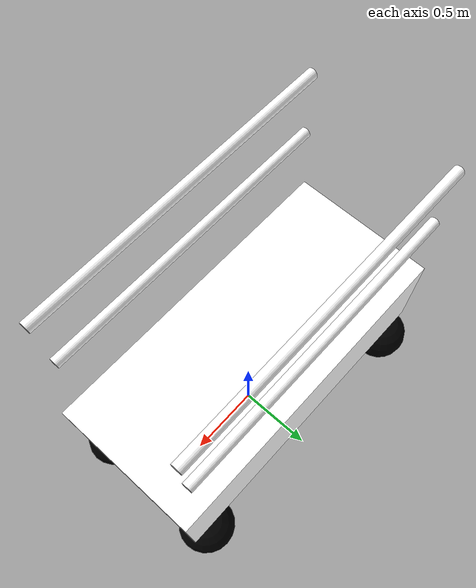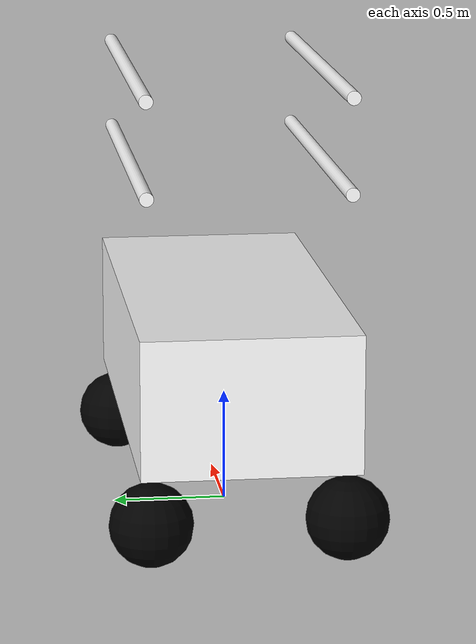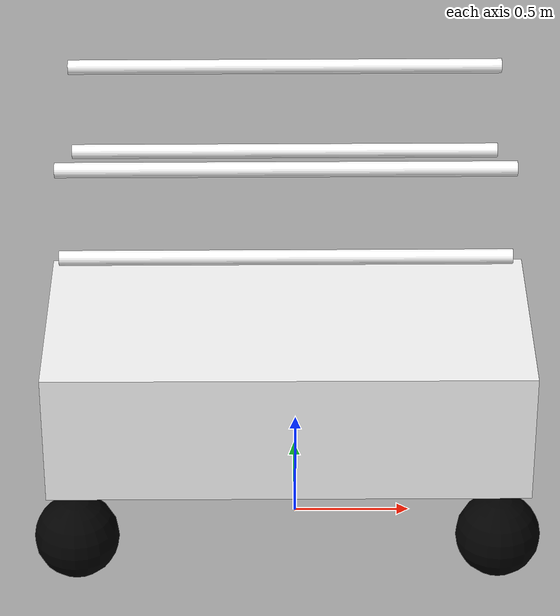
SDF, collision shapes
<sdf version="1.9">
    <model name="Mecanum_lift">
    	<pose>0 0 0 0 0 0</pose>
    	<link name="gt"/>
    	<pose>0 0 0.01 0 0 0</pose>
        <link name="base_footprint">
            <pose relative_to='gt_joint'>0 0 0 0 0 0</pose>
            <inertial>
                <mass>1.14395</mass>
                <inertia>
                    <ixx>0.126164</ixx>
                    <ixy>0</ixy>
                    <ixz>0</ixz>
                    <iyy>0.416519</iyy>
                    <iyz>0</iyz>
                    <izz>0.481014</izz>
                </inertia>
            </inertial>
            <collision name="scissor">
                <pose>-0.03 -0.132 0.708 0 0 0</pose>
                <geometry>
                    <box>
                        <size>2.04 0.936 0.6</size>
                    </box>
                </geometry>
            </collision>
            <collision name="bar_1">
                <pose>-0.042 0.294 1.98 0 1.57 0</pose>
                <geometry>
                    <cylinder>
                        <radius>0.03</radius>
                        <length>1.8</length>
                    </cylinder>
                </geometry>
            </collision>
            <collision name="bar_2">
                <pose>-0.042 0.294 1.578 0 1.57 0</pose>
                <geometry>
                    <cylinder>
                        <radius>0.03</radius>
                        <length>1.8</length>
                    </cylinder>
                </geometry>
            </collision>
            <collision name="bar_3">
                <pose>-0.042 -0.558 1.578 0 1.57 0</pose>
                <geometry>
                    <cylinder>
                        <radius>0.03</radius>
                        <length>1.8</length>
                    </cylinder>
                </geometry>
            </collision>
            <collision name="bar_4">
                <pose>-0.042 -0.558 1.98 0 1.57 0</pose>
                <geometry>
                    <cylinder>
                        <radius>0.03</radius>
                        <length>1.8</length>
                    </cylinder>
                </geometry>
            </collision>
            <visual name="visual">
                <pose>0 0 -0.084 1.57 0 0</pose>
                <geometry>
                    <mesh>
                        <scale>0.6 0.6 0.6</scale>
                        <uri>model://Mecanum_lift/meshes/MecanumLift.dae</uri>
                    </mesh>
                </geometry>
                <material>
                    <diffuse>1.0 1.0 1.0</diffuse>
                    <specular>1.0 1.0 1.0</specular>
                    <pbr>
                        <metal>
                            <albedo_map>model://Mecanum_lift/materials/textures/Forklift_Forklift_BaseColor.png</albedo_map>
                            <normal_map>model://Mecanum_lift/materials/textures/Forklift_Forklift_Normal.png</normal_map>
                            <metalness_map>model://Mecanum_lift/materials/textures/Forklift_Forklift_Metallic.png</metalness_map>
                            <roughness_map>model://Mecanum_lift/materials/textures/Forklift_Forklift_Roughness.png</roughness_map>
                            <environment_map>https://fuel.ignitionrobotics.org/1.0/openrobotics/models/Reflective table/1/files/materials/textures/DepotEnvMap.dds</environment_map>
                        </metal>
                    </pbr>
                    <!-- fallback to script if no PBR support-->
                    <script>
                        <uri>model://Mecanum_lift/materials/scripts/</uri>
                        <uri>model://Mecanum_lift/materials/textures/</uri>
                        <name>UrbanTile/Forklift_Diffuse</name>
                    </script>
                </material>
            </visual>
            <sensor name='mlift_front_laser_sensor' type='gpu_lidar'>
		<pose>0 -0.135 0.20 0 0 0</pose>
		<ignition_frame_id>Mecanum_lift/front_laser_link</ignition_frame_id>
		<topic>/Mecanum_lift/front_laser</topic>
		<update_rate>10</update_rate>
		<lidar>
		    <scan>
		        <horizontal>
		            <samples>541</samples>
		            <resolution>1</resolution>
		            <min_angle>-3.1415926535897932</min_angle>
		            <max_angle>3.1415926535897932</max_angle>
		        </horizontal>
		    </scan>
		    <range>
		        <min>1.25</min>
		        <max>15.0</max>
		        <resolution>0.03</resolution>
		    </range>
		</lidar>
		<always_on>1</always_on>
		<visualize>1</visualize>
	    </sensor>
        </link>
        <link name="front_right_wheel">
            <pose relative_to='front_right_wheel_joint'>0 0 0 0 0 0</pose>
            <inertial>
                <mass>2</mass>
                <inertia>
                    <ixx>0.145833</ixx>
                    <ixy>0</ixy>
                    <ixz>0</ixz>
                    <iyy>0.145833</iyy>
                    <iyz>0</iyz>
                    <izz>0.125</izz>
                </inertia>
            </inertial>
            <collision name="collision">
                <geometry>
                    <sphere>
                        <radius>0.18</radius>
                    </sphere>
                </geometry>
                <surface>
                    <friction>
                        <ode>
                            <mu>1.0</mu>
                            <mu2>0.0</mu2>
                            <fdir1 ignition:expressed_in="base_footprint">1 1 0</fdir1>
                        </ode>
                    </friction>
                </surface>
            </collision>
            <visual name="visual">
                <geometry>
                    <mesh>
                        <uri>model://Mecanum_lift/meshes/mecanum_wheel_right.STL</uri>
                        <scale>0.0036 0.0036 0.0036</scale>
                    </mesh>
                </geometry>
                <material>
                    <ambient>0 0 0</ambient>
                    <diffuse>0 0 0</diffuse>
                    <specular>1.0 1.0 1.0</specular>
                </material>
            </visual>
        </link>
        <link name="rear_right_wheel">
            <pose relative_to='rear_right_wheel_joint'>0 0 0 0 0 0</pose>
            <inertial>
                <mass>2</mass>
                <inertia>
                    <ixx>0.145833</ixx>
                    <ixy>0</ixy>
                    <ixz>0</ixz>
                    <iyy>0.145833</iyy>
                    <iyz>0</iyz>
                    <izz>0.125</izz>
                </inertia>
            </inertial>
            <collision name="collision">
                <geometry>
                    <sphere>
                        <radius>0.18</radius>
                    </sphere>
                </geometry>
                <surface>
                    <friction>
                        <ode>
                            <mu>1.0</mu>
                            <mu2>0.0</mu2>
                            <fdir1 ignition:expressed_in="base_footprint">1 -1 0</fdir1>
                        </ode>
                    </friction>
                </surface>
            </collision>
            <visual name="visual">
                <geometry>
                    <mesh>
                        <uri>model://Mecanum_lift/meshes/mecanum_wheel_left.STL</uri>
                        <scale>0.0036 0.0036 0.0036</scale>
                    </mesh>
                </geometry>
                <material>
                    <ambient>0 0 0</ambient>
                    <diffuse>0 0 0</diffuse>
                    <specular>1.0 1.0 1.0</specular>
                </material>
            </visual>
        </link>
        <link name="front_left_wheel">
            <pose relative_to='front_left_wheel_joint'>0 0 0 0 0 0</pose>
            <inertial>
                <mass>2</mass>
                <inertia>
                    <ixx>0.145833</ixx>
                    <ixy>0</ixy>
                    <ixz>0</ixz>
                    <iyy>0.145833</iyy>
                    <iyz>0</iyz>
                    <izz>0.125</izz>
                </inertia>
            </inertial>
            <collision name="collision">
                <geometry>
                    <sphere>
                        <radius>0.18</radius>
                    </sphere>
                </geometry>
                <surface>
                    <friction>
                        <ode>
                            <mu>1.0</mu>
                            <mu2>0.0</mu2>
                            <fdir1 ignition:expressed_in="base_footprint">1 -1 0</fdir1>
                        </ode>
                    </friction>
                </surface>
            </collision>
            <visual name="visual">
                <geometry>
                    <mesh>
                        <uri>model://Mecanum_lift/meshes/mecanum_wheel_left.STL</uri>
                        <scale>0.0036 0.0036 0.0036</scale>
                    </mesh>
                </geometry>
                <material>
                    <ambient>0 0 0</ambient>
                    <diffuse>0 0 0</diffuse>
                    <specular>1.0 1.0 1.0</specular>
                </material>
            </visual>
        </link>
        <link name="rear_left_wheel">
            <pose relative_to='rear_left_wheel_joint'>0 0 0 0 0 0</pose>
            <inertial>
                <mass>2</mass>
                <inertia>
                    <ixx>0.145833</ixx>
                    <ixy>0</ixy>
                    <ixz>0</ixz>
                    <iyy>0.145833</iyy>
                    <iyz>0</iyz>
                    <izz>0.125</izz>
                </inertia>
            </inertial>
            <collision name="collision">
                <geometry>
                    <sphere>
                        <radius>0.18</radius>
                    </sphere>
                </geometry>
                <surface>
                    <friction>
                        <ode>
                            <mu>1.0</mu>
                            <mu2>0.0</mu2>
                            <fdir1 ignition:expressed_in="base_footprint">1 1 0</fdir1>
                        </ode>
                    </friction>
                </surface>
            </collision>
            <visual name="visual">
                <geometry>
                    <mesh>
                        <uri>model://Mecanum_lift/meshes/mecanum_wheel_right.STL</uri>
                        <scale>0.0036 0.0036 0.0036</scale>
                    </mesh>
                </geometry>
                <material>
                    <ambient>0 0 0</ambient>
                    <diffuse>0 0 0</diffuse>
                    <specular>1.0 1.0 1.0</specular>
                </material>
            </visual>
        </link>
        <joint name="gt_joint" type="revolute">
            <pose relative_to='gt'>0 0.135 0 0 0 0</pose>
            <parent>gt</parent>
            <child>base_footprint</child>
            <axis>
                <xyz>0 1 0</xyz>
                <limit>
                    <lower>-1.79769e+308</lower>
                    <upper>1.79769e+308</upper>
                </limit>
            </axis>
        </joint>
        <joint name="front_left_wheel_joint" type="revolute">
            <pose relative_to='base_footprint'>0.858 0.282 0.186 0 0 0</pose>
            <parent>base_footprint</parent>
            <child>front_left_wheel</child>
            <axis>
                <xyz>0 1 0</xyz>
                <limit>
                    <lower>-1.79769e+308</lower>
                    <upper>1.79769e+308</upper>
                </limit>
            </axis>
        </joint>
        <joint name="front_right_wheel_joint" type="revolute">
            <pose relative_to='base_footprint'>0.858 -0.552 0.186 0 0 0</pose>
            <parent>base_footprint</parent>
            <child>front_right_wheel</child>
            <axis>
                <xyz>0 1 0</xyz>
                <limit>
                    <lower>-1.79769e+308</lower>
                    <upper>1.79769e+308</upper>
                </limit>
            </axis>
        </joint>
        <joint name="rear_left_wheel_joint" type="revolute">
            <pose relative_to='base_footprint'>-0.93 0.282 0.186 0 0 0</pose>
            <parent>base_footprint</parent>
            <child>rear_left_wheel</child>
            <axis>
                <xyz>0 1 0</xyz>
                <limit>
                    <lower>-1.79769e+308</lower>
                    <upper>1.79769e+308</upper>
                </limit>
            </axis>
        </joint>
        <joint name="rear_right_wheel_joint" type="revolute">
            <pose relative_to='base_footprint'>-0.93 -0.552 0.186 0 0 0</pose>
            <parent>base_footprint</parent>
            <child>rear_right_wheel</child>
            <axis>
                <xyz>0 1 0</xyz>
                <limit>
                    <lower>-1.79769e+308</lower>
                    <upper>1.79769e+308</upper>
                </limit>
            </axis>
        </joint>
        <plugin filename="ignition-gazebo-mecanum-drive-system" name="ignition::gazebo::systems::MecanumDrive">
            <front_left_joint>front_left_wheel_joint</front_left_joint>
            <back_left_joint>rear_left_wheel_joint</back_left_joint>
            <front_right_joint>front_right_wheel_joint</front_right_joint>
            <back_right_joint>rear_right_wheel_joint</back_right_joint>
            <wheel_separation>0.834</wheel_separation>
            <wheelbase>1.788</wheelbase>
            <wheel_radius>0.18</wheel_radius>
            <odom_publish_frequency>10</odom_publish_frequency>
            <topic>Mecanum_lift/cmd_vel</topic>
     	    <odom_topic>Mecanum_lift/odom</odom_topic>
      	    <tf_topic>Mecanum_lift/tf</tf_topic>
      	    <frame_id>Mecanum_lift/odom</frame_id>
            <child_frame_id>Mecanum_lift/base_footprint</child_frame_id>
        </plugin>
    </model>
</sdf>
